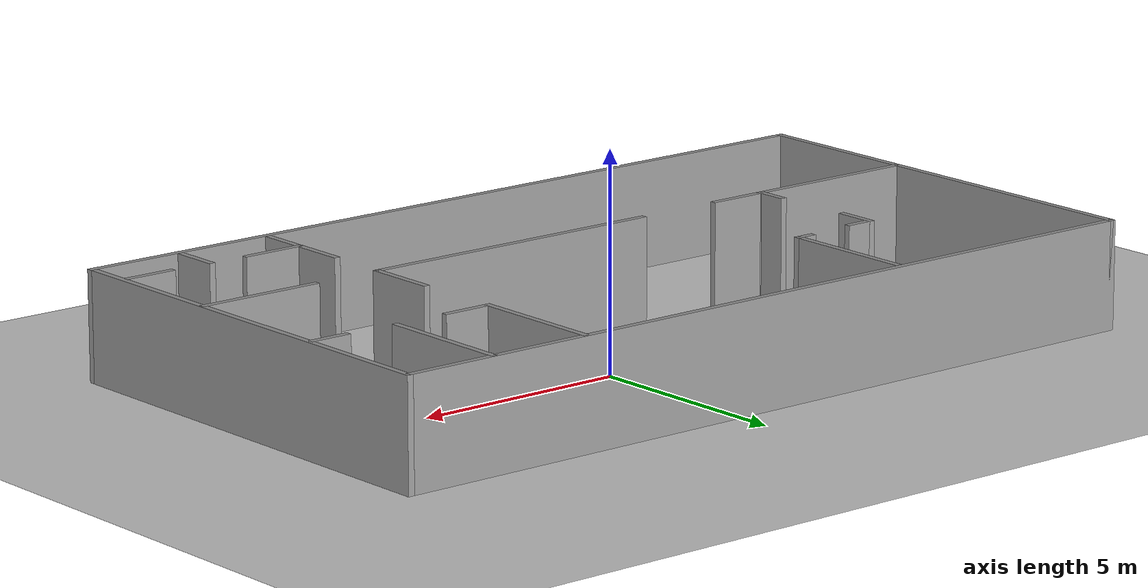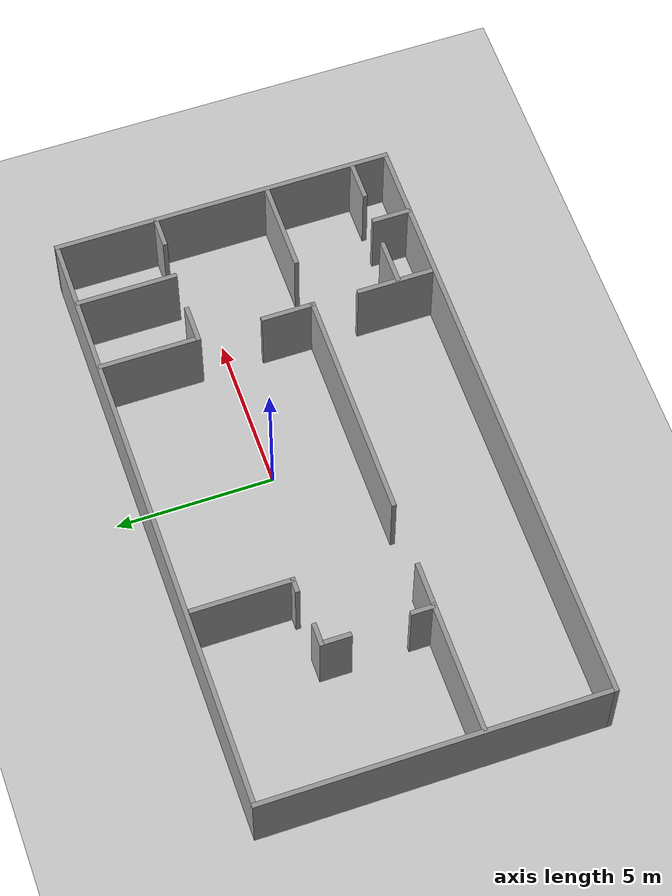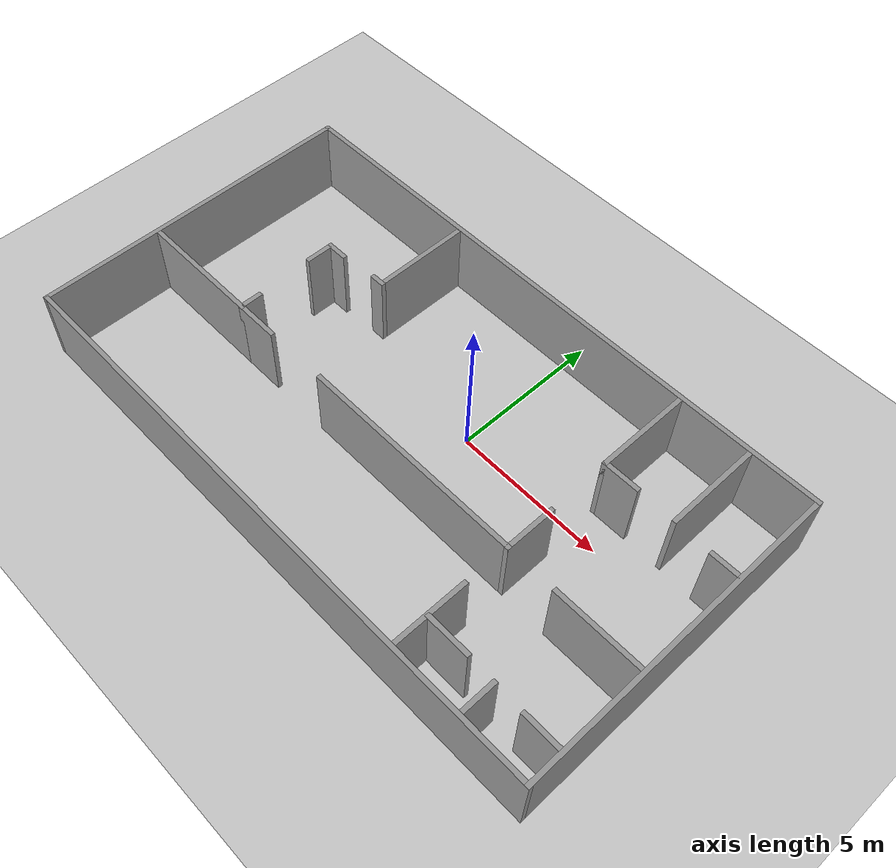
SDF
<sdf version="1.7">
 <world name="default">
  <light name="sun" type="directional">
   <pose>0 0 10 0 -0 0</pose>
   <diffuse>0.8 0.8 0.8 1</diffuse>
   <specular>0.2 0.2 0.2 1</specular>
   <attenuation>
    <range>1000</range>
    <constant>0.9</constant>
    <linear>0.01</linear>
    <quadratic>0.001</quadratic>
   </attenuation>
   <direction>-0.5 0.1 -0.9</direction>
   <spot><inner_angle>0</inner_angle><outer_angle>0</outer_angle><falloff>0</falloff></spot>
  </light>
  <model name="ground_plane">
   <static>1</static>
   <link name="link">
    <collision name="collision">
     <geometry><plane><normal>0 0 1</normal><size>100 100</size></plane></geometry>
     <surface>
      <contact><collide_bitmask>65535</collide_bitmask></contact>
      <friction><ode><mu>100</mu><mu2>50</mu2></ode></friction>
     </surface>
    </collision>
    <visual name="visual">
     <cast_shadows>0</cast_shadows>
     <geometry><plane><normal>0 0 1</normal><size>100 100</size></plane></geometry>
     <material>
      <script><uri>file://media/materials/scripts/gazebo.material</uri><name>Gazebo/Grey</name></script>
     </material>
    </visual>
   </link>
  </model>
  <gravity>0 0 -9.8</gravity>
  <magnetic_field>6e-06 2.3e-05 -4.2e-05</magnetic_field>
  <atmosphere type="adiabatic"/>
  <physics type="ode">
   <max_step_size>0.001</max_step_size>
   <real_time_factor>1</real_time_factor>
   <real_time_update_rate>1000</real_time_update_rate>
  </physics>
  <scene><ambient>0.4 0.4 0.4 1</ambient><background>0.7 0.7 0.7 1</background><shadows>1</shadows></scene>
  <spherical_coordinates>
   <surface_model>EARTH_WGS84</surface_model>
   <latitude_deg>0</latitude_deg>
   <longitude_deg>0</longitude_deg>
   <elevation>0</elevation>
   <heading_deg>0</heading_deg>
  </spherical_coordinates>
  <model name="office_floor_plan">
   <pose>-1.0976 -1.28854 0 0 -0 0</pose>
   <link name="Wall_0">
    <collision name="Wall_0_Collision">
     <geometry><box><size>19.75 0.15 2.5</size></box></geometry>
     <pose>0 0 1.25 0 -0 0</pose>
    </collision>
    <visual name="Wall_0_Visual">
     <pose>0 0 1.25 0 -0 0</pose>
     <geometry><box><size>19.75 0.15 2.5</size></box></geometry>
     <material>
      <script><uri>file://media/materials/scripts/gazebo.material</uri><name>Gazebo/Grey</name></script>
      <ambient>1 1 1 1</ambient>
     </material>
     <meta><layer>0</layer></meta>
    </visual>
    <pose>0 5.425 0 0 -0 0</pose>
   </link>
   <link name="Wall_1">
    <collision name="Wall_1_Collision">
     <geometry><box><size>11 0.15 2.5</size></box></geometry>
     <pose>0 0 1.25 0 -0 0</pose>
    </collision>
    <visual name="Wall_1_Visual">
     <pose>0 0 1.25 0 -0 0</pose>
     <geometry><box><size>11 0.15 2.5</size></box></geometry>
     <material>
      <script><uri>file://media/materials/scripts/gazebo.material</uri><name>Gazebo/Grey</name></script>
      <ambient>1 1 1 1</ambient>
     </material>
     <meta><layer>0</layer></meta>
    </visual>
    <pose>9.8 -0 0 0 -0 -1.5708</pose>
   </link>
   <link name="Wall_10">
    <collision name="Wall_10_Collision">
     <geometry><box><size>0.75 0.15 2.5</size></box></geometry>
     <pose>0 0 1.25 0 -0 0</pose>
    </collision>
    <visual name="Wall_10_Visual">
     <pose>0 0 1.25 0 -0 0</pose>
     <geometry><box><size>0.75 0.15 2.5</size></box></geometry>
     <material>
      <script><uri>file://media/materials/scripts/gazebo.material</uri><name>Gazebo/Grey</name></script>
      <ambient>1 1 1 1</ambient>
     </material>
     <meta><layer>0</layer></meta>
    </visual>
    <pose>-5.65037 -1.07285 0 0 -0 -1.5708</pose>
   </link>
   <link name="Wall_12">
    <collision name="Wall_12_Collision">
     <geometry><box><size>4.25 0.15 2.5</size></box></geometry>
     <pose>0 0 1.25 0 -0 0</pose>
    </collision>
    <visual name="Wall_12_Visual">
     <pose>0 0 1.25 0 -0 0</pose>
     <geometry><box><size>4.25 0.15 2.5</size></box></geometry>
     <material>
      <script><uri>file://media/materials/scripts/gazebo.material</uri><name>Gazebo/Grey</name></script>
      <ambient>1 1 1 1</ambient>
     </material>
     <meta><layer>0</layer></meta>
    </visual>
    <pose>-7.6702 -1.43785 0 0 -0 0</pose>
   </link>
   <link name="Wall_14">
    <collision name="Wall_14_Collision">
     <geometry><box><size>1.5 0.15 2.5</size></box></geometry>
     <pose>0 0 1.25 0 -0 0</pose>
    </collision>
    <visual name="Wall_14_Visual">
     <pose>0 0 1.25 0 -0 0</pose>
     <geometry><box><size>1.5 0.15 2.5</size></box></geometry>
     <material>
      <script><uri>file://media/materials/scripts/gazebo.material</uri><name>Gazebo/Grey</name></script>
      <ambient>1 1 1 1</ambient>
     </material>
     <meta><layer>0</layer></meta>
    </visual>
    <pose>-4.9452 -1.43785 0 0 -0 0</pose>
   </link>
   <link name="Wall_16">
    <collision name="Wall_16_Collision">
     <geometry><box><size>7.5 0.15 2.5</size></box></geometry>
     <pose>0 0 1.25 0 -0 0</pose>
    </collision>
    <visual name="Wall_16_Visual">
     <pose>0 0 1.25 0 -0 0</pose>
     <geometry><box><size>7.5 0.15 2.5</size></box></geometry>
     <material>
      <script><uri>file://media/materials/scripts/gazebo.material</uri><name>Gazebo/Grey</name></script>
      <ambient>1 1 1 1</ambient>
     </material>
     <meta><layer>0</layer></meta>
    </visual>
    <pose>1.56246 -1.43785 0 0 -0 0</pose>
   </link>
   <link name="Wall_17">
    <collision name="Wall_17_Collision">
     <geometry><box><size>1.75 0.15 2.5</size></box></geometry>
     <pose>0 0 1.25 0 -0 0</pose>
    </collision>
    <visual name="Wall_17_Visual">
     <pose>0 0 1.25 0 -0 0</pose>
     <geometry><box><size>1.75 0.15 2.5</size></box></geometry>
     <material>
      <script><uri>file://media/materials/scripts/gazebo.material</uri><name>Gazebo/Grey</name></script>
      <ambient>1 1 1 1</ambient>
     </material>
     <meta><layer>0</layer></meta>
    </visual>
    <pose>5.23746 -0.637851 0 0 -0 1.5708</pose>
   </link>
   <link name="Wall_19">
    <collision name="Wall_19_Collision">
     <geometry><box><size>3.25 0.15 2.5</size></box></geometry>
     <pose>0 0 1.25 0 -0 0</pose>
    </collision>
    <visual name="Wall_19_Visual">
     <pose>0 0 1.25 0 -0 0</pose>
     <geometry><box><size>3.25 0.15 2.5</size></box></geometry>
     <material>
      <script><uri>file://media/materials/scripts/gazebo.material</uri><name>Gazebo/Grey</name></script>
      <ambient>1 1 1 1</ambient>
     </material>
     <meta><layer>0</layer></meta>
    </visual>
    <pose>-3.52235 3.7154 0 0 -0 -1.5708</pose>
   </link>
   <link name="Wall_2">
    <collision name="Wall_2_Collision">
     <geometry><box><size>19.75 0.15 2.5</size></box></geometry>
     <pose>0 0 1.25 0 -0 0</pose>
    </collision>
    <visual name="Wall_2_Visual">
     <pose>0 0 1.25 0 -0 0</pose>
     <geometry><box><size>19.75 0.15 2.5</size></box></geometry>
     <material>
      <script><uri>file://media/materials/scripts/gazebo.material</uri><name>Gazebo/Grey</name></script>
      <ambient>1 1 1 1</ambient>
     </material>
     <meta><layer>0</layer></meta>
    </visual>
    <pose>0 -5.425 0 0 -0 3.14159</pose>
   </link>
   <link name="Wall_20">
    <collision name="Wall_20_Collision">
     <geometry><box><size>0.5 0.15 2.5</size></box></geometry>
     <pose>0 0 1.25 0 -0 0</pose>
    </collision>
    <visual name="Wall_20_Visual">
     <pose>0 0 1.25 0 -0 0</pose>
     <geometry><box><size>0.5 0.15 2.5</size></box></geometry>
     <material>
      <script><uri>file://media/materials/scripts/gazebo.material</uri><name>Gazebo/Grey</name></script>
      <ambient>1 1 1 1</ambient>
     </material>
     <meta><layer>0</layer></meta>
    </visual>
    <pose>-3.69735 2.1654 0 0 -0 3.14159</pose>
   </link>
   <link name="Wall_22">
    <collision name="Wall_22_Collision">
     <geometry><box><size>2.5 0.15 2.5</size></box></geometry>
     <pose>0 0 1.25 0 -0 0</pose>
    </collision>
    <visual name="Wall_22_Visual">
     <pose>0 0 1.25 0 -0 0</pose>
     <geometry><box><size>2.5 0.15 2.5</size></box></geometry>
     <material>
      <script><uri>file://media/materials/scripts/gazebo.material</uri><name>Gazebo/Grey</name></script>
      <ambient>1 1 1 1</ambient>
     </material>
     <meta><layer>0</layer></meta>
    </visual>
    <pose>5.21899 -4.12451 0 0 -0 -1.5708</pose>
   </link>
   <link name="Wall_24">
    <collision name="Wall_24_Collision">
     <geometry><box><size>1.5 0.15 2.5</size></box></geometry>
     <pose>0 0 1.25 0 -0 0</pose>
    </collision>
    <visual name="Wall_24_Visual">
     <pose>0 0 1.25 0 -0 0</pose>
     <geometry><box><size>1.5 0.15 2.5</size></box></geometry>
     <material>
      <script><uri>file://media/materials/scripts/gazebo.material</uri><name>Gazebo/Grey</name></script>
      <ambient>1 1 1 1</ambient>
     </material>
     <meta><layer>0</layer></meta>
    </visual>
    <pose>5.94025 -4.22169 0 0 -0 0</pose>
   </link>
   <link name="Wall_26">
    <collision name="Wall_26_Collision">
     <geometry><box><size>1.25 0.15 2.5</size></box></geometry>
     <pose>0 0 1.25 0 -0 0</pose>
    </collision>
    <visual name="Wall_26_Visual">
     <pose>0 0 1.25 0 -0 0</pose>
     <geometry><box><size>1.25 0.15 2.5</size></box></geometry>
     <material>
      <script><uri>file://media/materials/scripts/gazebo.material</uri><name>Gazebo/Grey</name></script>
      <ambient>1 1 1 1</ambient>
     </material>
     <meta><layer>0</layer></meta>
    </visual>
    <pose>7.55518 -4.81795 0 0 -0 -1.5708</pose>
   </link>
   <link name="Wall_28">
    <collision name="Wall_28_Collision">
     <geometry><box><size>1.25 0.15 2.5</size></box></geometry>
     <pose>0 0 1.25 0 -0 0</pose>
    </collision>
    <visual name="Wall_28_Visual">
     <pose>0 0 1.25 0 -0 0</pose>
     <geometry><box><size>1.25 0.15 2.5</size></box></geometry>
     <material>
      <script><uri>file://media/materials/scripts/gazebo.material</uri><name>Gazebo/Grey</name></script>
      <ambient>1 1 1 1</ambient>
     </material>
     <meta><layer>0</layer></meta>
    </visual>
    <pose>9.12292 -4.29108 0 0 -0 0</pose>
   </link>
   <link name="Wall_3">
    <collision name="Wall_3_Collision">
     <geometry><box><size>11 0.15 2.5</size></box></geometry>
     <pose>0 0 1.25 0 -0 0</pose>
    </collision>
    <visual name="Wall_3_Visual">
     <pose>0 0 1.25 0 -0 0</pose>
     <geometry><box><size>11 0.15 2.5</size></box></geometry>
     <material>
      <script><uri>file://media/materials/scripts/gazebo.material</uri><name>Gazebo/Grey</name></script>
      <ambient>1 1 1 1</ambient>
     </material>
     <meta><layer>0</layer></meta>
    </visual>
    <pose>-9.8 -0 0 0 -0 1.5708</pose>
   </link>
   <link name="Wall_30">
    <collision name="Wall_30_Collision">
     <geometry><box><size>3 0.15 2.5</size></box></geometry>
     <pose>0 0 1.25 0 -0 0</pose>
    </collision>
    <visual name="Wall_30_Visual">
     <pose>0 0 1.25 0 -0 0</pose>
     <geometry><box><size>3 0.15 2.5</size></box></geometry>
     <material>
      <script><uri>file://media/materials/scripts/gazebo.material</uri><name>Gazebo/Grey</name></script>
      <ambient>1 1 1 1</ambient>
     </material>
     <meta><layer>0</layer></meta>
    </visual>
    <pose>8.33252 -1.44602 0 0 -0 0</pose>
   </link>
   <link name="Wall_32">
    <collision name="Wall_32_Collision">
     <geometry><box><size>3.25 0.15 2.5</size></box></geometry>
     <pose>0 0 1.25 0 -0 0</pose>
    </collision>
    <visual name="Wall_32_Visual">
     <pose>0 0 1.25 0 -0 0</pose>
     <geometry><box><size>3.25 0.15 2.5</size></box></geometry>
     <material>
      <script><uri>file://media/materials/scripts/gazebo.material</uri><name>Gazebo/Grey</name></script>
      <ambient>1 1 1 1</ambient>
     </material>
     <meta><layer>0</layer></meta>
    </visual>
    <pose>7.62457 3.82751 0 0 -0 -1.5708</pose>
   </link>
   <link name="Wall_34">
    <collision name="Wall_34_Collision">
     <geometry><box><size>3.25 0.15 2.5</size></box></geometry>
     <pose>0 0 1.25 0 -0 0</pose>
    </collision>
    <visual name="Wall_34_Visual">
     <pose>0 0 1.25 0 -0 0</pose>
     <geometry><box><size>3.25 0.15 2.5</size></box></geometry>
     <material>
      <script><uri>file://media/materials/scripts/gazebo.material</uri><name>Gazebo/Grey</name></script>
      <ambient>1 1 1 1</ambient>
     </material>
     <meta><layer>0</layer></meta>
    </visual>
    <pose>5.21899 3.82751 0 0 -0 -1.5708</pose>
   </link>
   <link name="Wall_35">
    <collision name="Wall_35_Collision">
     <geometry><box><size>1.25 0.15 2.5</size></box></geometry>
     <pose>0 0 1.25 0 -0 0</pose>
    </collision>
    <visual name="Wall_35_Visual">
     <pose>0 0 1.25 0 -0 0</pose>
     <geometry><box><size>1.25 0.15 2.5</size></box></geometry>
     <material>
      <script><uri>file://media/materials/scripts/gazebo.material</uri><name>Gazebo/Grey</name></script>
      <ambient>1 1 1 1</ambient>
     </material>
     <meta><layer>0</layer></meta>
    </visual>
    <pose>5.76899 2.27751 0 0 -0 0</pose>
   </link>
   <link name="Wall_37">
    <collision name="Wall_37_Collision">
     <geometry><box><size>1 0.15 2.5</size></box></geometry>
     <pose>0 0 1.25 0 -0 0</pose>
    </collision>
    <visual name="Wall_37_Visual">
     <pose>0 0 1.25 0 -0 0</pose>
     <geometry><box><size>1 0.15 2.5</size></box></geometry>
     <material>
      <script><uri>file://media/materials/scripts/gazebo.material</uri><name>Gazebo/Grey</name></script>
      <ambient>1 1 1 1</ambient>
     </material>
     <meta><layer>0</layer></meta>
    </visual>
    <pose>9.30446 2.20862 0 0 -0 3.14159</pose>
   </link>
   <link name="Wall_7">
    <collision name="Wall_7_Collision">
     <geometry><box><size>0.75 0.15 2.5</size></box></geometry>
     <pose>0 0 1.25 0 -0 0</pose>
    </collision>
    <visual name="Wall_7_Visual">
     <pose>0 0 1.25 0 -0 0</pose>
     <geometry><box><size>0.75 0.15 2.5</size></box></geometry>
     <material>
      <script><uri>file://media/materials/scripts/gazebo.material</uri><name>Gazebo/Grey</name></script>
      <ambient>1 1 1 1</ambient>
     </material>
     <meta><layer>0</layer></meta>
    </visual>
    <pose>-5.41836 2.04677 0 0 -0 3.14159</pose>
   </link>
   <link name="Wall_8">
    <collision name="Wall_8_Collision">
     <geometry><box><size>1 0.15 2.5</size></box></geometry>
     <pose>0 0 1.25 0 -0 0</pose>
    </collision>
    <visual name="Wall_8_Visual">
     <pose>0 0 1.25 0 -0 0</pose>
     <geometry><box><size>1 0.15 2.5</size></box></geometry>
     <material>
      <script><uri>file://media/materials/scripts/gazebo.material</uri><name>Gazebo/Grey</name></script>
      <ambient>1 1 1 1</ambient>
     </material>
     <meta><layer>0</layer></meta>
    </visual>
    <pose>-5.71837 1.62177 0 0 -0 -1.5708</pose>
   </link>
   <static>1</static>
  </model>
 </world>
</sdf>
